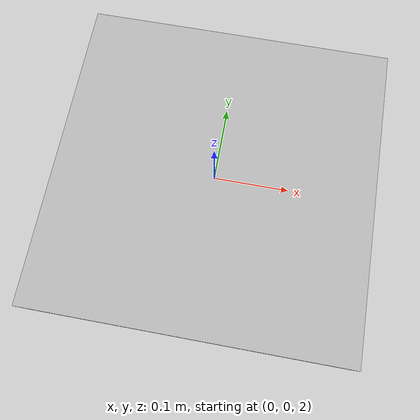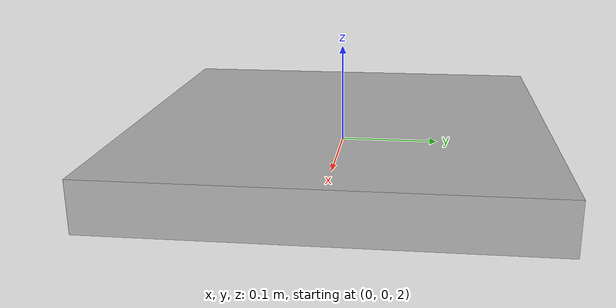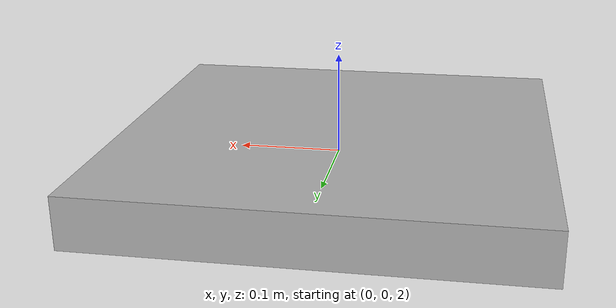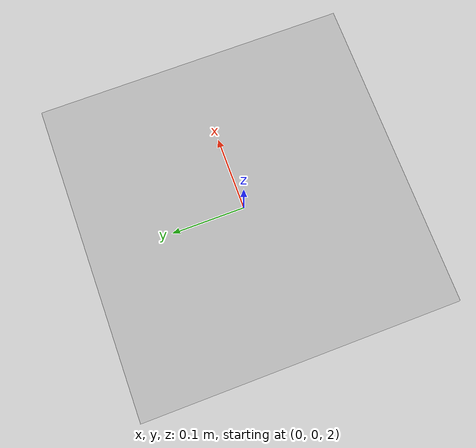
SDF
<?xml version="1.0"?>
<sdf version="1.6">
  <model name="billboard_go">
    <static>true</static>
    <link name="billboard_link">
      <visual name="billboard_visual">
        <pose>0 0 2.0 0 0 0</pose>
        <geometry>
          <box>
            <size>0.42 0.42 0.05</size>
          </box>
        </geometry>
        <material>
          <script>
            <uri>model://billboard_go/materials/scripts</uri>
            <uri>model://billboard_go/materials/textures</uri>
            <name>BillboardGo/Image</name>
          </script>
        </material>
      </visual>
    </link>
  </model>
</sdf>
